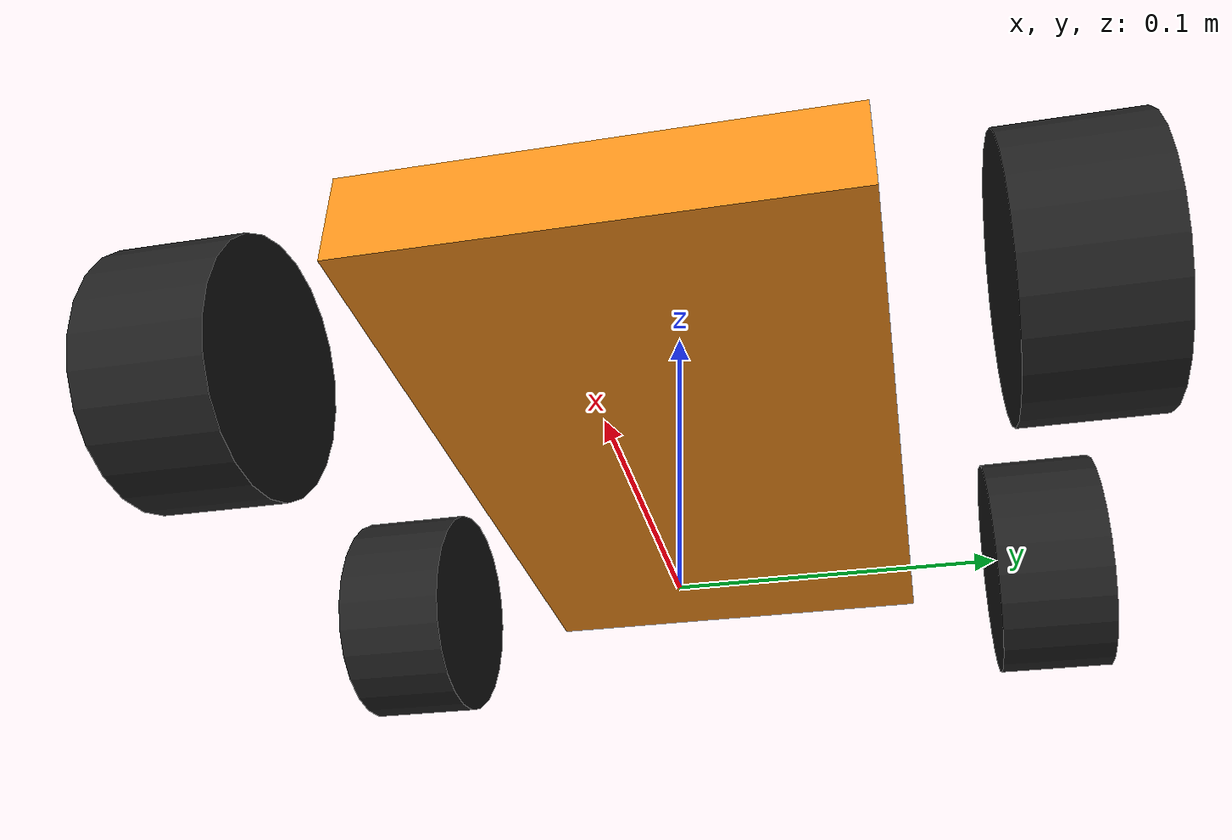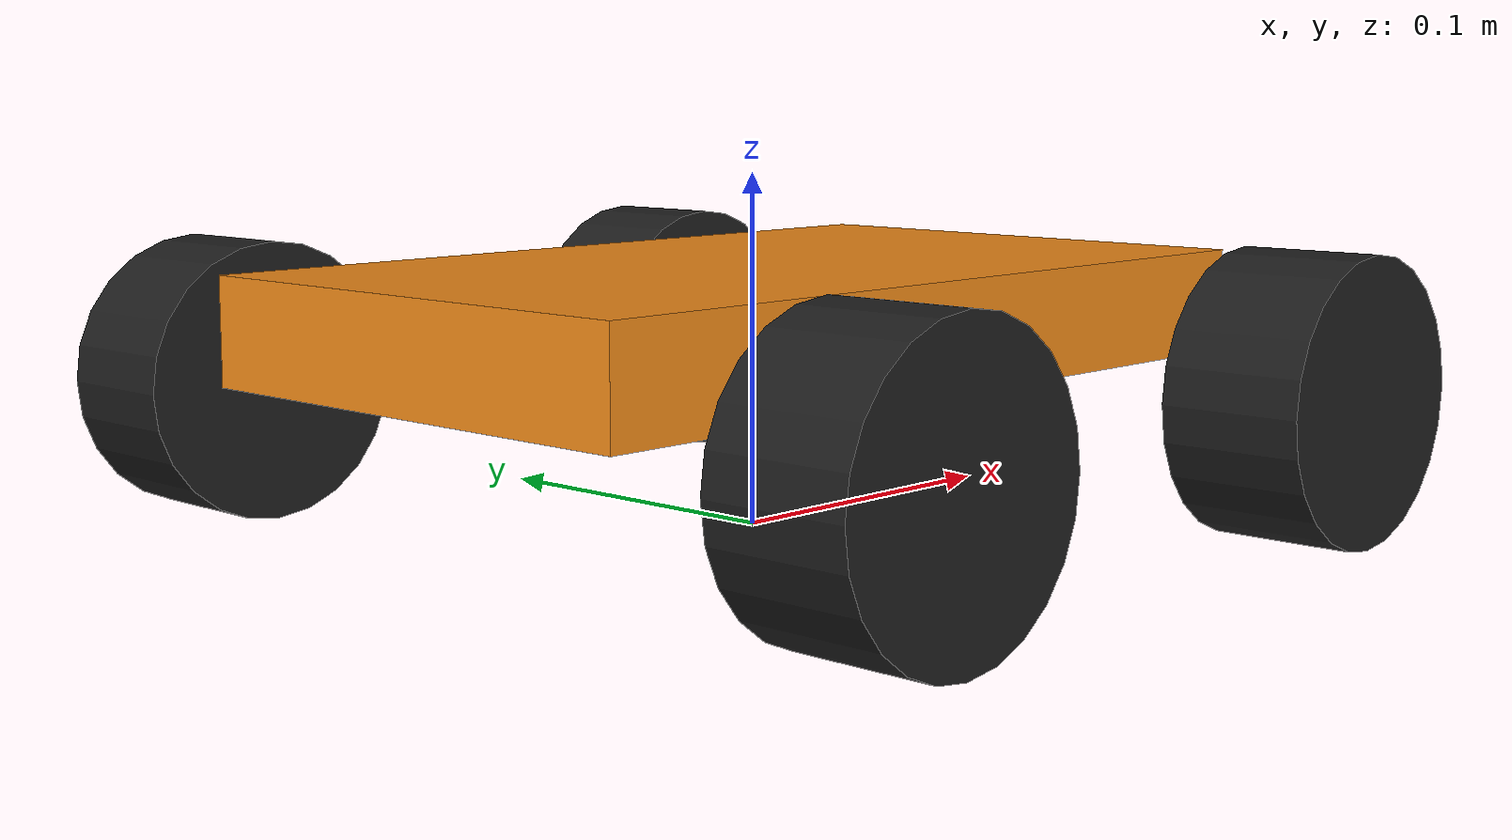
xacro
<?xml version="1.0"?>
<!-- Basic drive mobile base -->
<robot xmlns:xacro="http://www.ros.org/wiki/xacro" name="dogbot_base">
  <xacro:arg name="prefix" default="" />

  <xacro:include filename="$(find dogbot_description)/dogbot/urdf/dogbot.urdf.xacro" />

  <!-- Import Rviz colors -->
  <xacro:include filename="$(find dogbot_description)/dogbot/urdf/dogbot.materials.xacro" />

  <!-- Import dogbot ros2_control description -->
  <xacro:include filename="$(find dogbot_hardware)/ros2_control/dogbot.ros2_control.xacro" />

  <xacro:dogbot prefix="$(arg prefix)" />

  <xacro:dogbot_ros2_control
    name="DogBot" prefix="$(arg prefix)"/>

</robot>

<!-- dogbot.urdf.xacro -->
<robot xmlns:xacro="http://www.ros.org/wiki/xacro">
    <xacro:macro name="dogbot" params="prefix">
        <!-- Constants for robot dimensions -->
        <xacro:property name="PI" value="3.1415926535897931"/>
        <xacro:property name="base_mass" value="1.5"/> <!-- arbitrary value for base mass -->
        <xacro:property name="base_width" value="0.25"/>
        <xacro:property name="base_length" value="0.15"/>
        <xacro:property name="base_height" value="0.03"/>
        <xacro:property name="base_z_offset" value="0.06"/>
        <xacro:property name="wheel_mass" value="0.05"/> <!-- arbitrary value for wheel mass -->
        <xacro:property name="wheel_len" value="0.04"/>
        <xacro:property name="wheel_radius" value="0.04"/>
        <xacro:property name="wheel_x_alignment" value="0.0875"/>
        <xacro:property name="wheel_y_alignment" value="0.125"/>
        <xacro:property name="wheel_joint_z_offset" value="0.04"/> <!-- Space btw top of beam and each joint -->

        <!-- Base Link -->
        <link name="base_link">
            <collision>
                <origin xyz="0 0 0" rpy="0 0 0"/>
                <geometry>
                    <box size="${base_width} ${base_length} ${base_height}"/>
                </geometry>
            </collision>

            <visual>
                <origin xyz="0 0 ${base_z_offset}" rpy="0 0 0"/>
                <geometry>
                    <box size="${base_width} ${base_length} ${base_height}"/>
                </geometry>
                <material name="orange"/>
            </visual>
        </link>

        <!-- left front wheel joint -->
        <joint name="lf_wheel_joint" type="fixed">
            <parent link="base_link"/>
            <child link="lf_wheel"/>
            <origin xyz="${wheel_x_alignment} ${wheel_y_alignment} ${wheel_joint_z_offset}" rpy="0 0 0"/>
            <axis xyz="0 1 0"/>
        </joint>

        <!-- left front wheel Link -->
        <link name="lf_wheel">
            <collision>
                <origin xyz="0 0 0" rpy="${PI/2} 0 0"/>
                <geometry>
                    <cylinder length="${wheel_len}" radius="${wheel_radius}"/>
                </geometry>
            </collision>

            <visual>
                <origin xyz="0 0 0" rpy="${PI/2} 0 0"/>
                <geometry>
                    <cylinder length="${wheel_len}" radius="${wheel_radius}"/>
                </geometry>
                <material name="black"/>
            </visual>
        </link>

        <!-- right front wheel joint -->
        <joint name="rf_wheel_joint" type="continuous">
            <parent link="base_link"/>
            <child link="rf_wheel"/>
            <origin xyz="${wheel_x_alignment} -${wheel_y_alignment} ${wheel_joint_z_offset}" rpy="0 0 0"/>
            <axis xyz="0 1 0"/>
        </joint>

        <!-- right front wheel Link -->
        <link name="rf_wheel">
            <collision>
                <origin xyz="0 0 0" rpy="${PI/2} 0 0"/>
                <geometry>
                    <cylinder length="${wheel_len}" radius="${wheel_radius}"/>
                </geometry>
            </collision>

            <visual>
                <origin xyz="0 0 0" rpy="${PI/2} 0 0"/>
                <geometry>
                    <cylinder length="${wheel_len}" radius="${wheel_radius}"/>
                </geometry>
                <material name="black"/>
            </visual>
        </link>

        <!-- left back wheel joint -->
        <joint name="lb_wheel_joint" type="continuous">
            <parent link="base_link"/>
            <child link="lb_wheel"/>
            <origin xyz="-${wheel_x_alignment} ${wheel_y_alignment} ${wheel_joint_z_offset}" rpy="0 0 0"/>
            <axis xyz="0 1 0"/>
        </joint>

        <!-- left back wheel Link -->
        <link name="lb_wheel">
            <collision>
                <origin xyz="0 0 0" rpy="${PI/2} 0 0"/>
                <geometry>
                    <cylinder length="${wheel_len}" radius="${wheel_radius}"/>
                </geometry>
            </collision>

            <visual>
                <origin xyz="0 0 0" rpy="${PI/2} 0 0"/>
                <geometry>
                    <cylinder length="${wheel_len}" radius="${wheel_radius}"/>
                </geometry>
                <material name="black"/>
            </visual>
        </link>

        <!-- right back wheel joint -->
        <joint name="rb_wheel_joint" type="continuous">
            <parent link="base_link"/>
            <child link="rb_wheel"/>
            <origin xyz="-${wheel_x_alignment} -${wheel_y_alignment} ${wheel_joint_z_offset}" rpy="0 0 0"/>
            <axis xyz="0 1 0"/>
        </joint>

        <!-- right back wheel Link -->
        <link name="rb_wheel">
            <collision>
                <origin xyz="0 0 0" rpy="${PI/2} 0 0"/>
                <geometry>
                    <cylinder length="${wheel_len}" radius="${wheel_radius}"/>
                </geometry>
            </collision>

            <visual>
                <origin xyz="0 0 0" rpy="${PI/2} 0 0"/>
                <geometry>
                    <cylinder length="${wheel_len}" radius="${wheel_radius}"/>
                </geometry>
                <material name="black"/>
            </visual>
        </link>
    </xacro:macro>
</robot>
